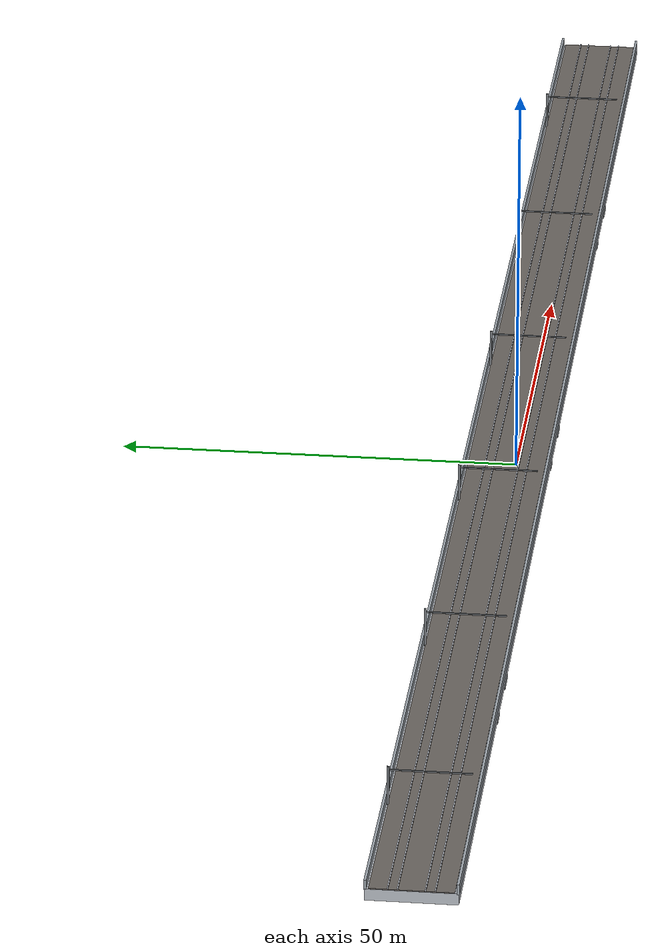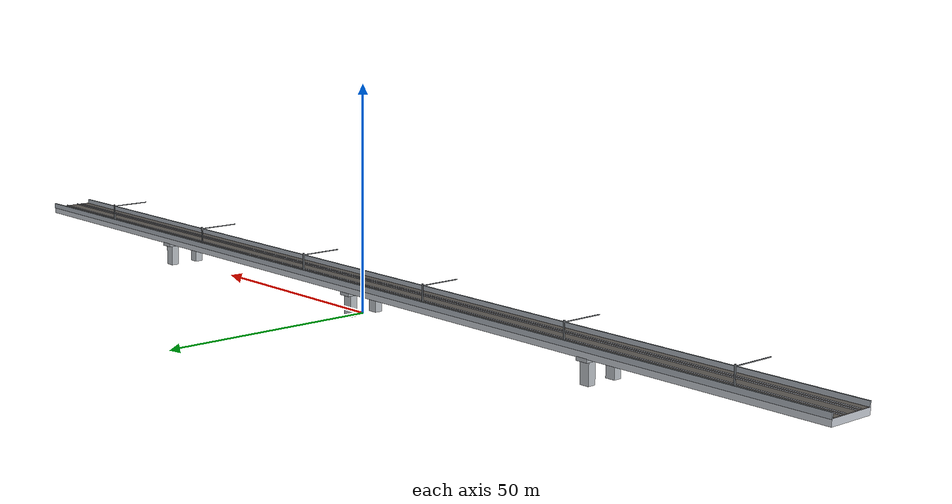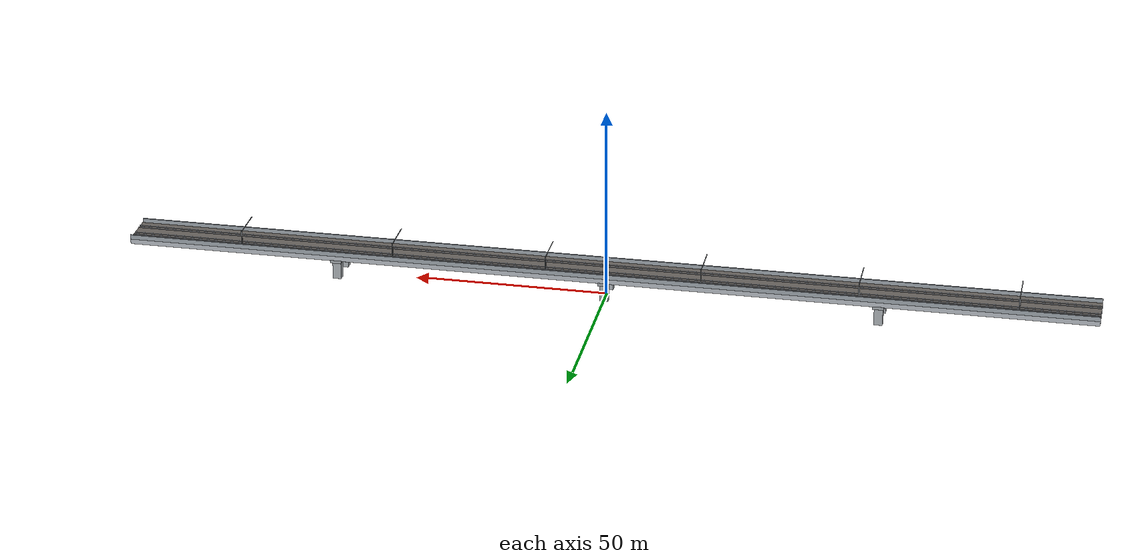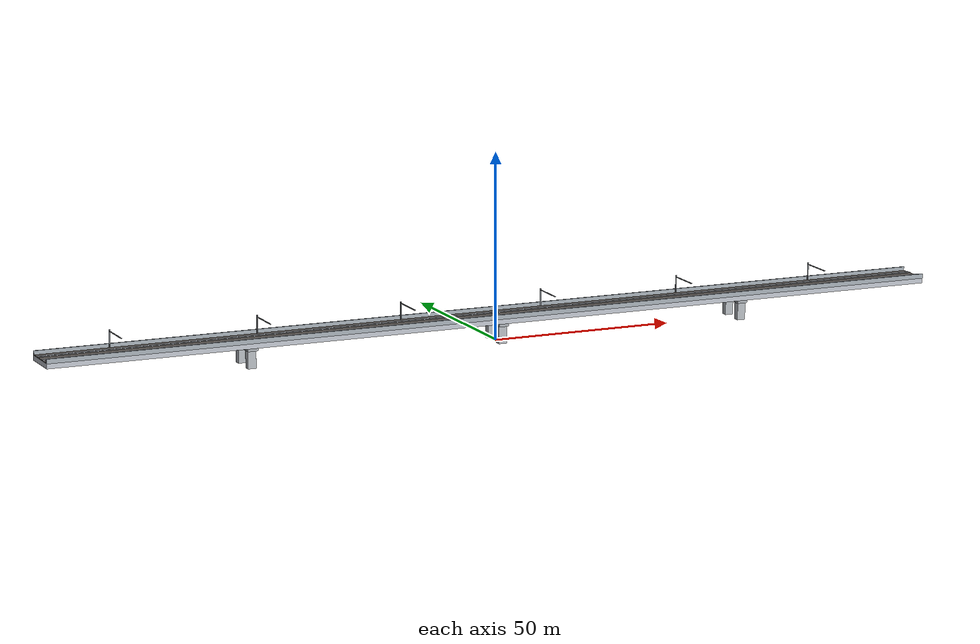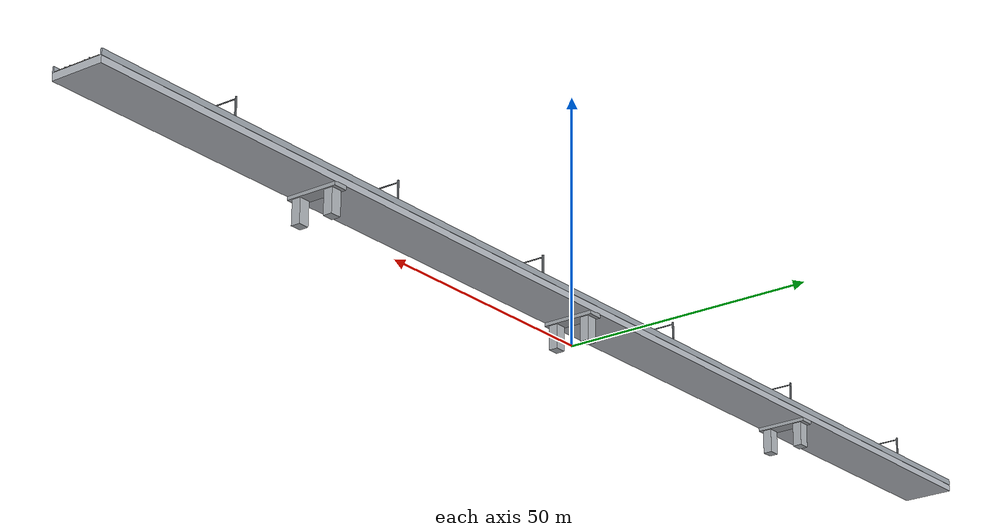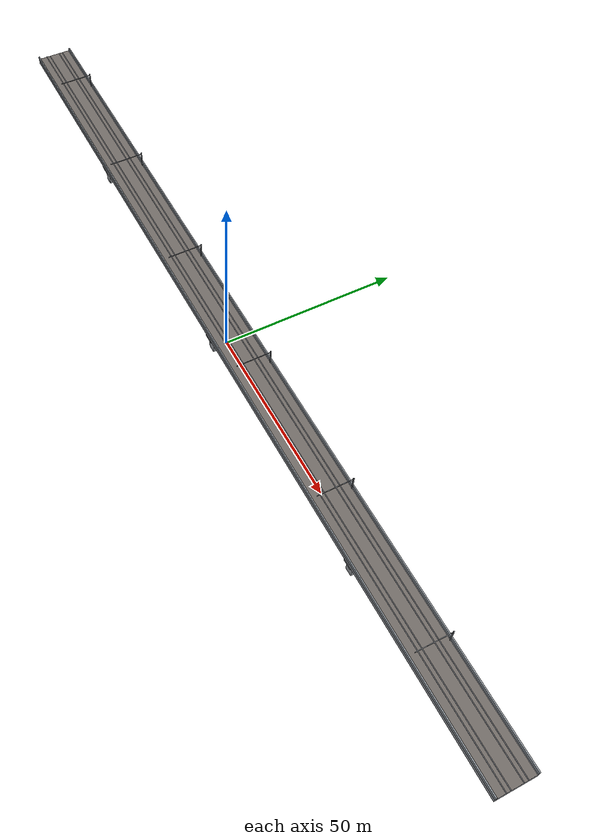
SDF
<?xml version="1.0" ?>
<sdf version="1.8">
  <model name="railway_viaduct_east_ext">
    <static>true</static>
    <link name="viaduct_link">
      <!-- 高架連續箱梁主橋面碰撞剛體 (淨空 5.4m) -->
      <collision name="girder_deck_col">
        <pose>0 0 6.1 0 0 0</pose>
        <geometry><box><size>250.0 10.5 1.4</size></box></geometry>
      </collision>

      <collision name="pier_0_w_col"><pose>-70.0 -3.5 2.7 0 0 0</pose><geometry><box><size>2.0 1.8 5.4</size></box></geometry></collision>
      <collision name="pier_0_e_col"><pose>-70.0 3.5 2.7 0 0 0</pose><geometry><box><size>2.0 1.8 5.4</size></box></geometry></collision>
      <collision name="pier_1_w_col"><pose>0.0 -3.5 2.7 0 0 0</pose><geometry><box><size>2.0 1.8 5.4</size></box></geometry></collision>
      <collision name="pier_1_e_col"><pose>0.0 3.5 2.7 0 0 0</pose><geometry><box><size>2.0 1.8 5.4</size></box></geometry></collision>
      <collision name="pier_2_w_col"><pose>70.0 -3.5 2.7 0 0 0</pose><geometry><box><size>2.0 1.8 5.4</size></box></geometry></collision>
      <collision name="pier_2_e_col"><pose>70.0 3.5 2.7 0 0 0</pose><geometry><box><size>2.0 1.8 5.4</size></box></geometry></collision>

      <!-- 預力混凝土連續箱梁主體 -->
      <visual name="girder_deck_vis">
        <pose>0 0 6.1 0 0 0</pose>
        <geometry><box><size>250.0 10.5 1.4</size></box></geometry>
        <material><ambient>0.65 0.67 0.70 1</ambient><diffuse>0.72 0.74 0.77 1</diffuse></material>
      </visual>

      <!-- 兩側防護隔音牆與護欄 (Safety Parapets) -->
      <visual name="parapet_left">
        <pose>0 5.15 7.3 0 0 0</pose>
        <geometry><box><size>250.0 0.3 1.2</size></box></geometry>
        <material><ambient>0.55 0.58 0.60 1</ambient><diffuse>0.62 0.65 0.68 1</diffuse></material>
      </visual>
      <visual name="parapet_right">
        <pose>0 -5.15 7.3 0 0 0</pose>
        <geometry><box><size>250.0 0.3 1.2</size></box></geometry>
        <material><ambient>0.55 0.58 0.60 1</ambient><diffuse>0.62 0.65 0.68 1</diffuse></material>
      </visual>

      <!-- 碎石道碴床 (Ballast Bed) -->
      <visual name="ballast_bed">
        <pose>0 0 6.85 0 0 0</pose>
        <geometry><box><size>250.0 9.6 0.12</size></box></geometry>
        <material><ambient>0.35 0.33 0.32 1</ambient><diffuse>0.42 0.40 0.38 1</diffuse></material>
      </visual>

      <!-- 雙軌鋼軌 (Dual Track Rails: 1067mm 窄軌/標準軌) -->
      <visual name="rail_up_l"><pose>0 2.65 7.0 0 0 0</pose><geometry><box><size>250.0 0.12 0.18</size></box></geometry><material><ambient>0.7 0.72 0.75 1</ambient><diffuse>0.82 0.84 0.88 1</diffuse><specular>0.9 0.9 0.95 1</specular></material></visual>
      <visual name="rail_up_r"><pose>0 1.55 7.0 0 0 0</pose><geometry><box><size>250.0 0.12 0.18</size></box></geometry><material><ambient>0.7 0.72 0.75 1</ambient><diffuse>0.82 0.84 0.88 1</diffuse><specular>0.9 0.9 0.95 1</specular></material></visual>
      <visual name="rail_dn_l"><pose>0 -1.55 7.0 0 0 0</pose><geometry><box><size>250.0 0.12 0.18</size></box></geometry><material><ambient>0.7 0.72 0.75 1</ambient><diffuse>0.82 0.84 0.88 1</diffuse><specular>0.9 0.9 0.95 1</specular></material></visual>
      <visual name="rail_dn_r"><pose>0 -2.65 7.0 0 0 0</pose><geometry><box><size>250.0 0.12 0.18</size></box></geometry><material><ambient>0.7 0.72 0.75 1</ambient><diffuse>0.82 0.84 0.88 1</diffuse><specular>0.9 0.9 0.95 1</specular></material></visual>

      <visual name="pier_0_w_vis"><pose>-70.0 -3.5 2.7 0 0 0</pose><geometry><box><size>2.2 1.8 5.4</size></box></geometry><material><ambient>0.62 0.64 0.66 1</ambient><diffuse>0.68 0.70 0.72 1</diffuse></material></visual>
      <visual name="pier_0_e_vis"><pose>-70.0 3.5 2.7 0 0 0</pose><geometry><box><size>2.2 1.8 5.4</size></box></geometry><material><ambient>0.62 0.64 0.66 1</ambient><diffuse>0.68 0.70 0.72 1</diffuse></material></visual>
      <visual name="cap_beam_0_vis"><pose>-70.0 0 5.1 0 0 0</pose><geometry><box><size>2.8 10.5 0.8</size></box></geometry><material><ambient>0.58 0.60 0.62 1</ambient><diffuse>0.64 0.66 0.68 1</diffuse></material></visual>
      <visual name="pier_1_w_vis"><pose>0.0 -3.5 2.7 0 0 0</pose><geometry><box><size>2.2 1.8 5.4</size></box></geometry><material><ambient>0.62 0.64 0.66 1</ambient><diffuse>0.68 0.70 0.72 1</diffuse></material></visual>
      <visual name="pier_1_e_vis"><pose>0.0 3.5 2.7 0 0 0</pose><geometry><box><size>2.2 1.8 5.4</size></box></geometry><material><ambient>0.62 0.64 0.66 1</ambient><diffuse>0.68 0.70 0.72 1</diffuse></material></visual>
      <visual name="cap_beam_1_vis"><pose>0.0 0 5.1 0 0 0</pose><geometry><box><size>2.8 10.5 0.8</size></box></geometry><material><ambient>0.58 0.60 0.62 1</ambient><diffuse>0.64 0.66 0.68 1</diffuse></material></visual>
      <visual name="pier_2_w_vis"><pose>70.0 -3.5 2.7 0 0 0</pose><geometry><box><size>2.2 1.8 5.4</size></box></geometry><material><ambient>0.62 0.64 0.66 1</ambient><diffuse>0.68 0.70 0.72 1</diffuse></material></visual>
      <visual name="pier_2_e_vis"><pose>70.0 3.5 2.7 0 0 0</pose><geometry><box><size>2.2 1.8 5.4</size></box></geometry><material><ambient>0.62 0.64 0.66 1</ambient><diffuse>0.68 0.70 0.72 1</diffuse></material></visual>
      <visual name="cap_beam_2_vis"><pose>70.0 0 5.1 0 0 0</pose><geometry><box><size>2.8 10.5 0.8</size></box></geometry><material><ambient>0.58 0.60 0.62 1</ambient><diffuse>0.64 0.66 0.68 1</diffuse></material></visual>

      <visual name="catenary_mast_0"><pose>-105.0 4.8 9.2 0 0 0</pose><geometry><box><size>0.25 0.25 4.8</size></box></geometry><material><ambient>0.4 0.42 0.45 1</ambient><diffuse>0.48 0.50 0.52 1</diffuse></material></visual>
      <visual name="catenary_arm_0"><pose>-105.0 0 11.2 0 0 0</pose><geometry><box><size>0.15 9.6 0.15</size></box></geometry><material><ambient>0.4 0.42 0.45 1</ambient><diffuse>0.48 0.50 0.52 1</diffuse></material></visual>
      <visual name="catenary_mast_1"><pose>-65.0 4.8 9.2 0 0 0</pose><geometry><box><size>0.25 0.25 4.8</size></box></geometry><material><ambient>0.4 0.42 0.45 1</ambient><diffuse>0.48 0.50 0.52 1</diffuse></material></visual>
      <visual name="catenary_arm_1"><pose>-65.0 0 11.2 0 0 0</pose><geometry><box><size>0.15 9.6 0.15</size></box></geometry><material><ambient>0.4 0.42 0.45 1</ambient><diffuse>0.48 0.50 0.52 1</diffuse></material></visual>
      <visual name="catenary_mast_2"><pose>-25.0 4.8 9.2 0 0 0</pose><geometry><box><size>0.25 0.25 4.8</size></box></geometry><material><ambient>0.4 0.42 0.45 1</ambient><diffuse>0.48 0.50 0.52 1</diffuse></material></visual>
      <visual name="catenary_arm_2"><pose>-25.0 0 11.2 0 0 0</pose><geometry><box><size>0.15 9.6 0.15</size></box></geometry><material><ambient>0.4 0.42 0.45 1</ambient><diffuse>0.48 0.50 0.52 1</diffuse></material></visual>
      <visual name="catenary_mast_3"><pose>15.0 4.8 9.2 0 0 0</pose><geometry><box><size>0.25 0.25 4.8</size></box></geometry><material><ambient>0.4 0.42 0.45 1</ambient><diffuse>0.48 0.50 0.52 1</diffuse></material></visual>
      <visual name="catenary_arm_3"><pose>15.0 0 11.2 0 0 0</pose><geometry><box><size>0.15 9.6 0.15</size></box></geometry><material><ambient>0.4 0.42 0.45 1</ambient><diffuse>0.48 0.50 0.52 1</diffuse></material></visual>
      <visual name="catenary_mast_4"><pose>55.0 4.8 9.2 0 0 0</pose><geometry><box><size>0.25 0.25 4.8</size></box></geometry><material><ambient>0.4 0.42 0.45 1</ambient><diffuse>0.48 0.50 0.52 1</diffuse></material></visual>
      <visual name="catenary_arm_4"><pose>55.0 0 11.2 0 0 0</pose><geometry><box><size>0.15 9.6 0.15</size></box></geometry><material><ambient>0.4 0.42 0.45 1</ambient><diffuse>0.48 0.50 0.52 1</diffuse></material></visual>
      <visual name="catenary_mast_5"><pose>95.0 4.8 9.2 0 0 0</pose><geometry><box><size>0.25 0.25 4.8</size></box></geometry><material><ambient>0.4 0.42 0.45 1</ambient><diffuse>0.48 0.50 0.52 1</diffuse></material></visual>
      <visual name="catenary_arm_5"><pose>95.0 0 11.2 0 0 0</pose><geometry><box><size>0.15 9.6 0.15</size></box></geometry><material><ambient>0.4 0.42 0.45 1</ambient><diffuse>0.48 0.50 0.52 1</diffuse></material></visual>
    </link>
  </model>
</sdf>
